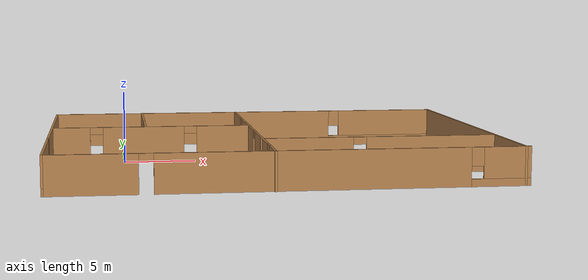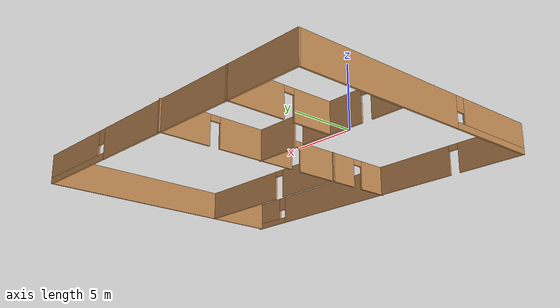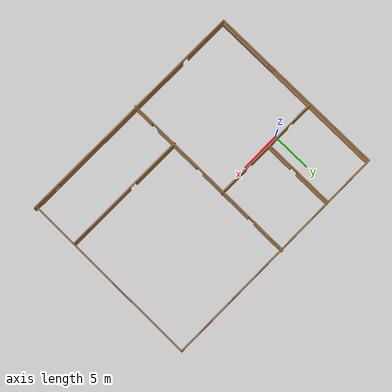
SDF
<?xml version='1.0'?>
<sdf version='1.6'>
  <model name='my_building_1'>
    <pose frame=''>9.97426 -1.91633 0 0 -0 0</pose>
    <link name='Wall_1'>
      <pose frame=''>-0.124999 11.4186 0 0 -0 0</pose>
      <visual name='Wall_1_Visual_0'>
        <pose frame=''>-4.16407 0 1.25 0 -0 0</pose>
        <geometry>
          <box>
            <size>21.6719 0.15 2.5</size>
          </box>
        </geometry>
        <material>
          <script>
            <uri>file://media/materials/scripts/gazebo.material</uri>
            <name>Gazebo/Wood</name>
          </script>
          <ambient>1 1 1 1</ambient>
        </material>
        <meta>
          <layer>0</layer>
        </meta>
      </visual>
      <collision name='Wall_1_Collision_0'>
        <geometry>
          <box>
            <size>21.6719 0.15 2.5</size>
          </box>
        </geometry>
        <pose frame=''>-4.16407 0 1.25 0 -0 0</pose>
      </collision>
      <visual name='Wall_1_Visual_1'>
        <pose frame=''>10.8359 0 0.25 0 -0 0</pose>
        <geometry>
          <box>
            <size>8.32814 0.15 0.5</size>
          </box>
        </geometry>
        <material>
          <script>
            <uri>file://media/materials/scripts/gazebo.material</uri>
            <name>Gazebo/Wood</name>
          </script>
          <ambient>1 1 1 1</ambient>
        </material>
        <meta>
          <layer>0</layer>
        </meta>
      </visual>
      <collision name='Wall_1_Collision_1'>
        <geometry>
          <box>
            <size>8.32814 0.15 0.5</size>
          </box>
        </geometry>
        <pose frame=''>10.8359 0 0.25 0 -0 0</pose>
      </collision>
      <visual name='Wall_1_Visual_2'>
        <pose frame=''>11.2359 0 1.5 0 -0 0</pose>
        <geometry>
          <box>
            <size>7.52814 0.15 2</size>
          </box>
        </geometry>
        <material>
          <script>
            <uri>file://media/materials/scripts/gazebo.material</uri>
            <name>Gazebo/Wood</name>
          </script>
          <ambient>1 1 1 1</ambient>
        </material>
        <meta>
          <layer>0</layer>
        </meta>
      </visual>
      <collision name='Wall_1_Collision_2'>
        <geometry>
          <box>
            <size>7.52814 0.15 2</size>
          </box>
        </geometry>
        <pose frame=''>11.2359 0 1.5 0 -0 0</pose>
      </collision>
      <visual name='Wall_1_Visual_3'>
        <pose frame=''>7.07186 0 1.9 0 -0 0</pose>
        <geometry>
          <box>
            <size>0.8 0.15 1.2</size>
          </box>
        </geometry>
        <material>
          <script>
            <uri>file://media/materials/scripts/gazebo.material</uri>
            <name>Gazebo/Wood</name>
          </script>
          <ambient>1 1 1 1</ambient>
        </material>
        <meta>
          <layer>0</layer>
        </meta>
      </visual>
      <collision name='Wall_1_Collision_3'>
        <geometry>
          <box>
            <size>0.8 0.15 1.2</size>
          </box>
        </geometry>
        <pose frame=''>7.07186 0 1.9 0 -0 0</pose>
      </collision>
    </link>
    <link name='Wall_11'>
      <pose frame=''>-7.99391 2.26804 0 0 -0 0</pose>
      <visual name='Wall_11_Visual_0'>
        <pose frame=''>-5.7544 0 1.25 0 -0 0</pose>
        <geometry>
          <box>
            <size>2.74119 0.15 2.5</size>
          </box>
        </geometry>
        <material>
          <script>
            <uri>file://media/materials/scripts/gazebo.material</uri>
            <name>Gazebo/Wood</name>
          </script>
          <ambient>1 1 1 1</ambient>
        </material>
        <meta>
          <layer>0</layer>
        </meta>
      </visual>
      <collision name='Wall_11_Collision_0'>
        <geometry>
          <box>
            <size>2.74119 0.15 2.5</size>
          </box>
        </geometry>
        <pose frame=''>-5.7544 0 1.25 0 -0 0</pose>
      </collision>
      <visual name='Wall_11_Visual_1'>
        <pose frame=''>-0.602997 0 1.25 0 -0 0</pose>
        <geometry>
          <box>
            <size>5.76161 0.15 2.5</size>
          </box>
        </geometry>
        <material>
          <script>
            <uri>file://media/materials/scripts/gazebo.material</uri>
            <name>Gazebo/Wood</name>
          </script>
          <ambient>1 1 1 1</ambient>
        </material>
        <meta>
          <layer>0</layer>
        </meta>
      </visual>
      <collision name='Wall_11_Collision_1'>
        <geometry>
          <box>
            <size>5.76161 0.15 2.5</size>
          </box>
        </geometry>
        <pose frame=''>-0.602997 0 1.25 0 -0 0</pose>
      </collision>
      <visual name='Wall_11_Visual_2'>
        <pose frame=''>5.1514 0 1.25 0 -0 0</pose>
        <geometry>
          <box>
            <size>3.94719 0.15 2.5</size>
          </box>
        </geometry>
        <material>
          <script>
            <uri>file://media/materials/scripts/gazebo.material</uri>
            <name>Gazebo/Wood</name>
          </script>
          <ambient>1 1 1 1</ambient>
        </material>
        <meta>
          <layer>0</layer>
        </meta>
      </visual>
      <collision name='Wall_11_Collision_2'>
        <geometry>
          <box>
            <size>3.94719 0.15 2.5</size>
          </box>
        </geometry>
        <pose frame=''>5.1514 0 1.25 0 -0 0</pose>
      </collision>
      <visual name='Wall_11_Visual_3'>
        <pose frame=''>-3.9338 0 2.25 0 -0 0</pose>
        <geometry>
          <box>
            <size>0.9 0.15 0.5</size>
          </box>
        </geometry>
        <material>
          <script>
            <uri>file://media/materials/scripts/gazebo.material</uri>
            <name>Gazebo/Wood</name>
          </script>
          <ambient>1 1 1 1</ambient>
        </material>
        <meta>
          <layer>0</layer>
        </meta>
      </visual>
      <collision name='Wall_11_Collision_3'>
        <geometry>
          <box>
            <size>0.9 0.15 0.5</size>
          </box>
        </geometry>
        <pose frame=''>-3.9338 0 2.25 0 -0 0</pose>
      </collision>
      <visual name='Wall_11_Visual_4'>
        <pose frame=''>2.72781 0 2.25 0 -0 0</pose>
        <geometry>
          <box>
            <size>0.9 0.15 0.5</size>
          </box>
        </geometry>
        <material>
          <script>
            <uri>file://media/materials/scripts/gazebo.material</uri>
            <name>Gazebo/Wood</name>
          </script>
          <ambient>1 1 1 1</ambient>
        </material>
        <meta>
          <layer>0</layer>
        </meta>
      </visual>
      <collision name='Wall_11_Collision_4'>
        <geometry>
          <box>
            <size>0.9 0.15 0.5</size>
          </box>
        </geometry>
        <pose frame=''>2.72781 0 2.25 0 -0 0</pose>
      </collision>
    </link>
    <link name='Wall_13'>
      <pose frame=''>-8.44665 6.88983 0 0 0 -1.5708</pose>
      <visual name='Wall_13_Visual_0'>
        <pose frame=''>-2.18561 0 1.25 0 -0 0</pose>
        <geometry>
          <box>
            <size>4.87878 0.15 2.5</size>
          </box>
        </geometry>
        <material>
          <script>
            <uri>file://media/materials/scripts/gazebo.material</uri>
            <name>Gazebo/Wood</name>
          </script>
          <ambient>1 1 1 1</ambient>
        </material>
        <meta>
          <layer>0</layer>
        </meta>
      </visual>
      <collision name='Wall_13_Collision_0'>
        <geometry>
          <box>
            <size>4.87878 0.15 2.5</size>
          </box>
        </geometry>
        <pose frame=''>-2.18561 0 1.25 0 -0 0</pose>
      </collision>
      <visual name='Wall_13_Visual_1'>
        <pose frame=''>2.88939 0 1.25 0 -0 0</pose>
        <geometry>
          <box>
            <size>3.47122 0.15 2.5</size>
          </box>
        </geometry>
        <material>
          <script>
            <uri>file://media/materials/scripts/gazebo.material</uri>
            <name>Gazebo/Wood</name>
          </script>
          <ambient>1 1 1 1</ambient>
        </material>
        <meta>
          <layer>0</layer>
        </meta>
      </visual>
      <collision name='Wall_13_Collision_1'>
        <geometry>
          <box>
            <size>3.47122 0.15 2.5</size>
          </box>
        </geometry>
        <pose frame=''>2.88939 0 1.25 0 -0 0</pose>
      </collision>
      <visual name='Wall_13_Visual_2'>
        <pose frame=''>0.703778 0 2.25 0 -0 0</pose>
        <geometry>
          <box>
            <size>0.9 0.15 0.5</size>
          </box>
        </geometry>
        <material>
          <script>
            <uri>file://media/materials/scripts/gazebo.material</uri>
            <name>Gazebo/Wood</name>
          </script>
          <ambient>1 1 1 1</ambient>
        </material>
        <meta>
          <layer>0</layer>
        </meta>
      </visual>
      <collision name='Wall_13_Collision_2'>
        <geometry>
          <box>
            <size>0.9 0.15 0.5</size>
          </box>
        </geometry>
        <pose frame=''>0.703778 0 2.25 0 -0 0</pose>
      </collision>
    </link>
    <link name='Wall_19'>
      <pose frame=''>6.78661 -5.46813 0 0 -0 0</pose>
      <visual name='Wall_19_Visual_0'>
        <pose frame=''>-4.88505 0 1.25 0 -0 0</pose>
        <geometry>
          <box>
            <size>6.22989 0.15 2.5</size>
          </box>
        </geometry>
        <material>
          <script>
            <uri>file://media/materials/scripts/gazebo.material</uri>
            <name>Gazebo/Wood</name>
          </script>
          <ambient>1 1 1 1</ambient>
        </material>
        <meta>
          <layer>0</layer>
        </meta>
      </visual>
      <collision name='Wall_19_Collision_0'>
        <geometry>
          <box>
            <size>6.22989 0.15 2.5</size>
          </box>
        </geometry>
        <pose frame=''>-4.88505 0 1.25 0 -0 0</pose>
      </collision>
      <visual name='Wall_19_Visual_1'>
        <pose frame=''>3.56495 0 1.25 0 -0 0</pose>
        <geometry>
          <box>
            <size>8.87011 0.15 2.5</size>
          </box>
        </geometry>
        <material>
          <script>
            <uri>file://media/materials/scripts/gazebo.material</uri>
            <name>Gazebo/Wood</name>
          </script>
          <ambient>1 1 1 1</ambient>
        </material>
        <meta>
          <layer>0</layer>
        </meta>
      </visual>
      <collision name='Wall_19_Collision_1'>
        <geometry>
          <box>
            <size>8.87011 0.15 2.5</size>
          </box>
        </geometry>
        <pose frame=''>3.56495 0 1.25 0 -0 0</pose>
      </collision>
      <visual name='Wall_19_Visual_2'>
        <pose frame=''>-1.32011 0 2.25 0 -0 0</pose>
        <geometry>
          <box>
            <size>0.9 0.15 0.5</size>
          </box>
        </geometry>
        <material>
          <script>
            <uri>file://media/materials/scripts/gazebo.material</uri>
            <name>Gazebo/Wood</name>
          </script>
          <ambient>1 1 1 1</ambient>
        </material>
        <meta>
          <layer>0</layer>
        </meta>
      </visual>
      <collision name='Wall_19_Collision_2'>
        <geometry>
          <box>
            <size>0.9 0.15 0.5</size>
          </box>
        </geometry>
        <pose frame=''>-1.32011 0 2.25 0 -0 0</pose>
      </collision>
    </link>
    <link name='Wall_3'>
      <pose frame=''>-15.05 -0.006449 0 0 0 -1.5708</pose>
      <visual name='Wall_3_Visual_0'>
        <pose frame=''>-4.05004 0 1.25 0 -0 0</pose>
        <geometry>
          <box>
            <size>14.8999 0.15 2.5</size>
          </box>
        </geometry>
        <material>
          <script>
            <uri>file://media/materials/scripts/gazebo.material</uri>
            <name>Gazebo/Wood</name>
          </script>
          <ambient>1 1 1 1</ambient>
        </material>
        <meta>
          <layer>0</layer>
        </meta>
      </visual>
      <collision name='Wall_3_Collision_0'>
        <geometry>
          <box>
            <size>14.8999 0.15 2.5</size>
          </box>
        </geometry>
        <pose frame=''>-4.05004 0 1.25 0 -0 0</pose>
      </collision>
      <visual name='Wall_3_Visual_1'>
        <pose frame=''>7.44996 0 0.25 0 -0 0</pose>
        <geometry>
          <box>
            <size>8.10008 0.15 0.5</size>
          </box>
        </geometry>
        <material>
          <script>
            <uri>file://media/materials/scripts/gazebo.material</uri>
            <name>Gazebo/Wood</name>
          </script>
          <ambient>1 1 1 1</ambient>
        </material>
        <meta>
          <layer>0</layer>
        </meta>
      </visual>
      <collision name='Wall_3_Collision_1'>
        <geometry>
          <box>
            <size>8.10008 0.15 0.5</size>
          </box>
        </geometry>
        <pose frame=''>7.44996 0 0.25 0 -0 0</pose>
      </collision>
      <visual name='Wall_3_Visual_2'>
        <pose frame=''>7.84996 0 1.5 0 -0 0</pose>
        <geometry>
          <box>
            <size>7.30008 0.15 2</size>
          </box>
        </geometry>
        <material>
          <script>
            <uri>file://media/materials/scripts/gazebo.material</uri>
            <name>Gazebo/Wood</name>
          </script>
          <ambient>1 1 1 1</ambient>
        </material>
        <meta>
          <layer>0</layer>
        </meta>
      </visual>
      <collision name='Wall_3_Collision_2'>
        <geometry>
          <box>
            <size>7.30008 0.15 2</size>
          </box>
        </geometry>
        <pose frame=''>7.84996 0 1.5 0 -0 0</pose>
      </collision>
      <visual name='Wall_3_Visual_3'>
        <pose frame=''>3.79992 0 1.9 0 -0 0</pose>
        <geometry>
          <box>
            <size>0.8 0.15 1.2</size>
          </box>
        </geometry>
        <material>
          <script>
            <uri>file://media/materials/scripts/gazebo.material</uri>
            <name>Gazebo/Wood</name>
          </script>
          <ambient>1 1 1 1</ambient>
        </material>
        <meta>
          <layer>0</layer>
        </meta>
      </visual>
      <collision name='Wall_3_Collision_3'>
        <geometry>
          <box>
            <size>0.8 0.15 1.2</size>
          </box>
        </geometry>
        <pose frame=''>3.79992 0 1.9 0 -0 0</pose>
      </collision>
    </link>
    <link name='Wall_5'>
      <collision name='Wall_5_Collision'>
        <geometry>
          <box>
            <size>23 0.15 2.5</size>
          </box>
        </geometry>
        <pose frame=''>0 0 1.25 0 -0 0</pose>
      </collision>
      <visual name='Wall_5_Visual'>
        <pose frame=''>0 0 1.25 0 -0 0</pose>
        <geometry>
          <box>
            <size>23 0.15 2.5</size>
          </box>
        </geometry>
        <material>
          <script>
            <uri>file://media/materials/scripts/gazebo.material</uri>
            <name>Gazebo/Wood</name>
          </script>
          <ambient>1 1 1 1</ambient>
        </material>
        <meta>
          <layer>0</layer>
        </meta>
      </visual>
      <pose frame=''>14.8 -0.006449 0 0 0 -1.5708</pose>
    </link>
    <link name='Wall_7'>
      <pose frame=''>1e-06 -11.4314 0 0 -0 0</pose>
      <visual name='Wall_7_Visual_0'>
        <pose frame=''>-12.2247 0 1.25 0 -0 0</pose>
        <geometry>
          <box>
            <size>5.80053 0.15 2.5</size>
          </box>
        </geometry>
        <material>
          <script>
            <uri>file://media/materials/scripts/gazebo.material</uri>
            <name>Gazebo/Wood</name>
          </script>
          <ambient>1 1 1 1</ambient>
        </material>
        <meta>
          <layer>0</layer>
        </meta>
      </visual>
      <collision name='Wall_7_Collision_0'>
        <geometry>
          <box>
            <size>5.80053 0.15 2.5</size>
          </box>
        </geometry>
        <pose frame=''>-12.2247 0 1.25 0 -0 0</pose>
      </collision>
      <visual name='Wall_7_Visual_1'>
        <pose frame=''>1.42052 0 1.25 0 -0 0</pose>
        <geometry>
          <box>
            <size>19.69 0.15 2.5</size>
          </box>
        </geometry>
        <material>
          <script>
            <uri>file://media/materials/scripts/gazebo.material</uri>
            <name>Gazebo/Wood</name>
          </script>
          <ambient>1 1 1 1</ambient>
        </material>
        <meta>
          <layer>0</layer>
        </meta>
      </visual>
      <collision name='Wall_7_Collision_1'>
        <geometry>
          <box>
            <size>19.69 0.15 2.5</size>
          </box>
        </geometry>
        <pose frame=''>1.42052 0 1.25 0 -0 0</pose>
      </collision>
      <visual name='Wall_7_Visual_2'>
        <pose frame=''>13.1953 0 0.25 0 -0 0</pose>
        <geometry>
          <box>
            <size>3.85949 0.15 0.5</size>
          </box>
        </geometry>
        <material>
          <script>
            <uri>file://media/materials/scripts/gazebo.material</uri>
            <name>Gazebo/Wood</name>
          </script>
          <ambient>1 1 1 1</ambient>
        </material>
        <meta>
          <layer>0</layer>
        </meta>
      </visual>
      <collision name='Wall_7_Collision_2'>
        <geometry>
          <box>
            <size>3.85949 0.15 0.5</size>
          </box>
        </geometry>
        <pose frame=''>13.1953 0 0.25 0 -0 0</pose>
      </collision>
      <visual name='Wall_7_Visual_3'>
        <pose frame=''>13.5953 0 1.5 0 -0 0</pose>
        <geometry>
          <box>
            <size>3.05949 0.15 2</size>
          </box>
        </geometry>
        <material>
          <script>
            <uri>file://media/materials/scripts/gazebo.material</uri>
            <name>Gazebo/Wood</name>
          </script>
          <ambient>1 1 1 1</ambient>
        </material>
        <meta>
          <layer>0</layer>
        </meta>
      </visual>
      <collision name='Wall_7_Collision_3'>
        <geometry>
          <box>
            <size>3.05949 0.15 2</size>
          </box>
        </geometry>
        <pose frame=''>13.5953 0 1.5 0 -0 0</pose>
      </collision>
      <visual name='Wall_7_Visual_4'>
        <pose frame=''>11.6655 0 1.9 0 -0 0</pose>
        <geometry>
          <box>
            <size>0.8 0.15 1.2</size>
          </box>
        </geometry>
        <material>
          <script>
            <uri>file://media/materials/scripts/gazebo.material</uri>
            <name>Gazebo/Wood</name>
          </script>
          <ambient>1 1 1 1</ambient>
        </material>
        <meta>
          <layer>0</layer>
        </meta>
      </visual>
      <collision name='Wall_7_Collision_4'>
        <geometry>
          <box>
            <size>0.8 0.15 1.2</size>
          </box>
        </geometry>
        <pose frame=''>11.6655 0 1.9 0 -0 0</pose>
      </collision>
      <visual name='Wall_7_Visual_5'>
        <pose frame=''>-8.87447 0 2.25 0 -0 0</pose>
        <geometry>
          <box>
            <size>0.9 0.15 0.5</size>
          </box>
        </geometry>
        <material>
          <script>
            <uri>file://media/materials/scripts/gazebo.material</uri>
            <name>Gazebo/Wood</name>
          </script>
          <ambient>1 1 1 1</ambient>
        </material>
        <meta>
          <layer>0</layer>
        </meta>
      </visual>
      <collision name='Wall_7_Collision_5'>
        <geometry>
          <box>
            <size>0.9 0.15 0.5</size>
          </box>
        </geometry>
        <pose frame=''>-8.87447 0 2.25 0 -0 0</pose>
      </collision>
    </link>
    <link name='Wall_9'>
      <pose frame=''>-1.03553 0 0 0 0 -1.5708</pose>
      <visual name='Wall_9_Visual_0'>
        <pose frame=''>-9.40809 0 1.25 0 -0 0</pose>
        <geometry>
          <box>
            <size>4.43381 0.15 2.5</size>
          </box>
        </geometry>
        <material>
          <script>
            <uri>file://media/materials/scripts/gazebo.material</uri>
            <name>Gazebo/Wood</name>
          </script>
          <ambient>1 1 1 1</ambient>
        </material>
        <meta>
          <layer>0</layer>
        </meta>
      </visual>
      <collision name='Wall_9_Collision_0'>
        <geometry>
          <box>
            <size>4.43381 0.15 2.5</size>
          </box>
        </geometry>
        <pose frame=''>-9.40809 0 1.25 0 -0 0</pose>
      </collision>
      <visual name='Wall_9_Visual_1'>
        <pose frame=''>-2.71646 0 1.25 0 -0 0</pose>
        <geometry>
          <box>
            <size>7.14945 0.15 2.5</size>
          </box>
        </geometry>
        <material>
          <script>
            <uri>file://media/materials/scripts/gazebo.material</uri>
            <name>Gazebo/Wood</name>
          </script>
          <ambient>1 1 1 1</ambient>
        </material>
        <meta>
          <layer>0</layer>
        </meta>
      </visual>
      <collision name='Wall_9_Collision_1'>
        <geometry>
          <box>
            <size>7.14945 0.15 2.5</size>
          </box>
        </geometry>
        <pose frame=''>-2.71646 0 1.25 0 -0 0</pose>
      </collision>
      <visual name='Wall_9_Visual_2'>
        <pose frame=''>4.87038 0 1.25 0 -0 0</pose>
        <geometry>
          <box>
            <size>6.22423 0.15 2.5</size>
          </box>
        </geometry>
        <material>
          <script>
            <uri>file://media/materials/scripts/gazebo.material</uri>
            <name>Gazebo/Wood</name>
          </script>
          <ambient>1 1 1 1</ambient>
        </material>
        <meta>
          <layer>0</layer>
        </meta>
      </visual>
      <collision name='Wall_9_Collision_2'>
        <geometry>
          <box>
            <size>6.22423 0.15 2.5</size>
          </box>
        </geometry>
        <pose frame=''>4.87038 0 1.25 0 -0 0</pose>
      </collision>
      <visual name='Wall_9_Visual_3'>
        <pose frame=''>10.2537 0 1.25 0 -0 0</pose>
        <geometry>
          <box>
            <size>2.74251 0.15 2.5</size>
          </box>
        </geometry>
        <material>
          <script>
            <uri>file://media/materials/scripts/gazebo.material</uri>
            <name>Gazebo/Wood</name>
          </script>
          <ambient>1 1 1 1</ambient>
        </material>
        <meta>
          <layer>0</layer>
        </meta>
      </visual>
      <collision name='Wall_9_Collision_3'>
        <geometry>
          <box>
            <size>2.74251 0.15 2.5</size>
          </box>
        </geometry>
        <pose frame=''>10.2537 0 1.25 0 -0 0</pose>
      </collision>
      <visual name='Wall_9_Visual_4'>
        <pose frame=''>-6.74119 0 2.25 0 -0 0</pose>
        <geometry>
          <box>
            <size>0.9 0.15 0.5</size>
          </box>
        </geometry>
        <material>
          <script>
            <uri>file://media/materials/scripts/gazebo.material</uri>
            <name>Gazebo/Wood</name>
          </script>
          <ambient>1 1 1 1</ambient>
        </material>
        <meta>
          <layer>0</layer>
        </meta>
      </visual>
      <collision name='Wall_9_Collision_4'>
        <geometry>
          <box>
            <size>0.9 0.15 0.5</size>
          </box>
        </geometry>
        <pose frame=''>-6.74119 0 2.25 0 -0 0</pose>
      </collision>
      <visual name='Wall_9_Visual_5'>
        <pose frame=''>1.30826 0 2.25 0 -0 0</pose>
        <geometry>
          <box>
            <size>0.9 0.15 0.5</size>
          </box>
        </geometry>
        <material>
          <script>
            <uri>file://media/materials/scripts/gazebo.material</uri>
            <name>Gazebo/Wood</name>
          </script>
          <ambient>1 1 1 1</ambient>
        </material>
        <meta>
          <layer>0</layer>
        </meta>
      </visual>
      <collision name='Wall_9_Collision_5'>
        <geometry>
          <box>
            <size>0.9 0.15 0.5</size>
          </box>
        </geometry>
        <pose frame=''>1.30826 0 2.25 0 -0 0</pose>
      </collision>
      <visual name='Wall_9_Visual_6'>
        <pose frame=''>8.43249 0 2.25 0 -0 0</pose>
        <geometry>
          <box>
            <size>0.9 0.15 0.5</size>
          </box>
        </geometry>
        <material>
          <script>
            <uri>file://media/materials/scripts/gazebo.material</uri>
            <name>Gazebo/Wood</name>
          </script>
          <ambient>1 1 1 1</ambient>
        </material>
        <meta>
          <layer>0</layer>
        </meta>
      </visual>
      <collision name='Wall_9_Collision_6'>
        <geometry>
          <box>
            <size>0.9 0.15 0.5</size>
          </box>
        </geometry>
        <pose frame=''>8.43249 0 2.25 0 -0 0</pose>
      </collision>
    </link>
    <static>1</static>
  </model>
</sdf>
